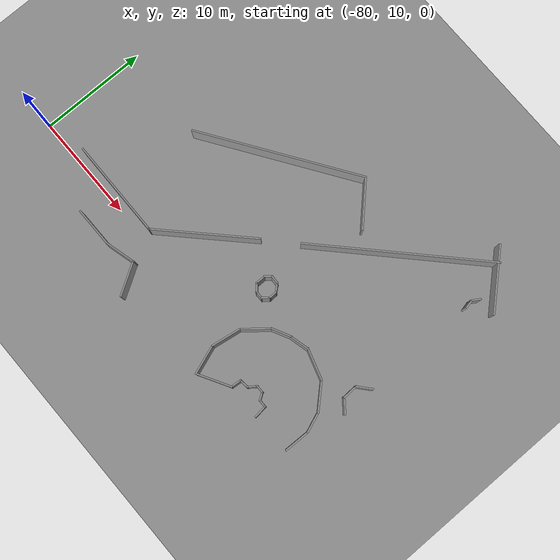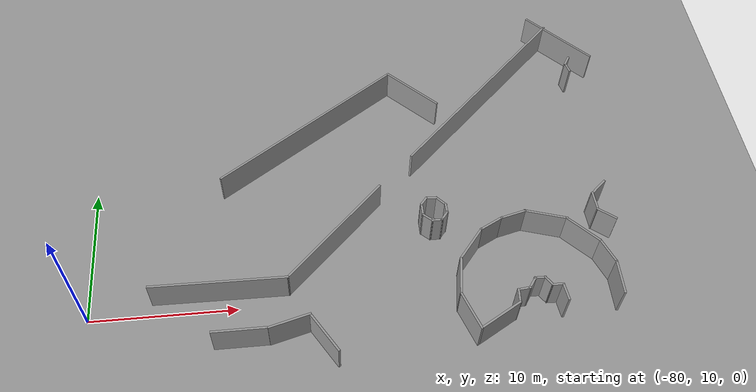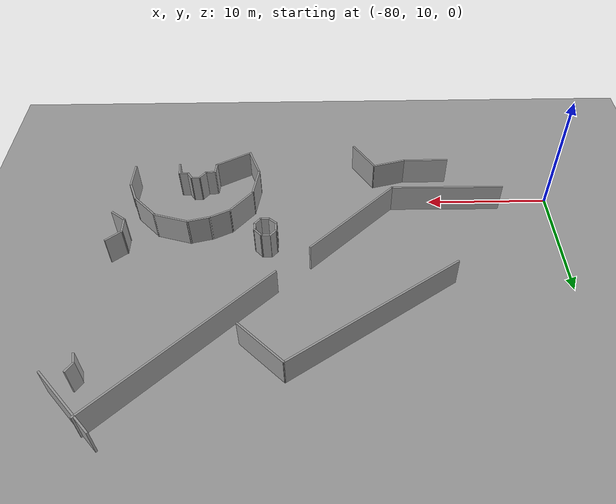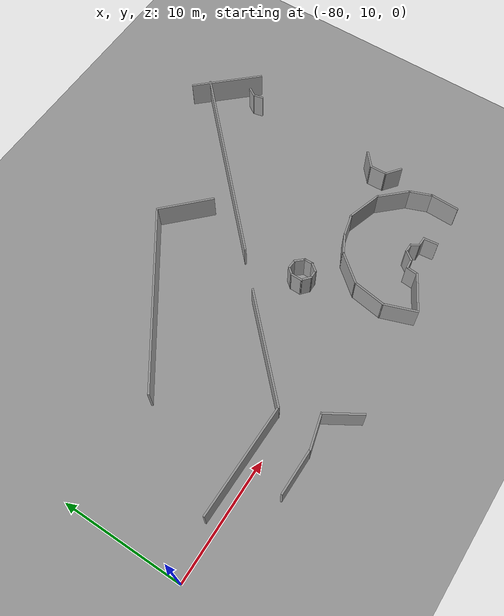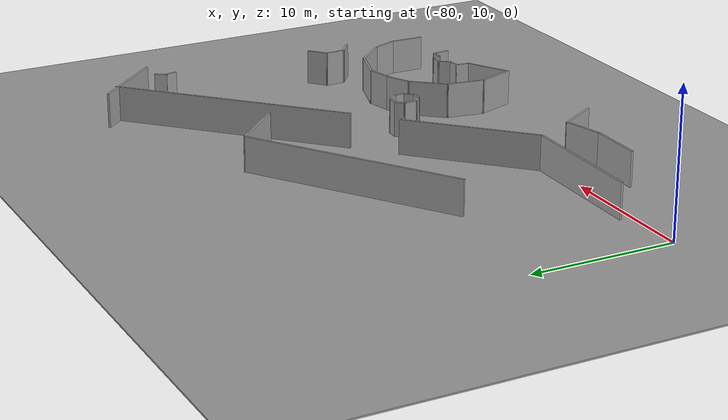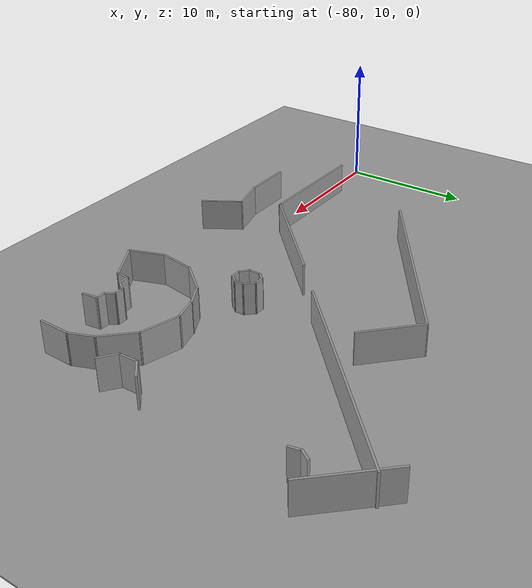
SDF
<sdf version="1.6">
 <world name="default">
  <model name="ground_plane">
   <static>1</static>
   <link name="link">
    <collision name="collision">
     <geometry><plane><normal>0 0 1</normal><size>100 100</size></plane></geometry>
     <surface><friction><ode><mu>100</mu><mu2>50</mu2></ode></friction></surface>
    </collision>
    <visual name="visual">
     <cast_shadows>0</cast_shadows>
     <geometry><plane><normal>0 0 1</normal><size>100 100</size></plane></geometry>
     <material>
      <script><uri>file://media/materials/scripts/gazebo.material</uri><name>Gazebo/Grey</name></script>
     </material>
    </visual>
   </link>
  </model>
  <model name="mall_new_reduce_size">
   <pose>-6.8092 7.5529 0 0 -0 0</pose>
   <link name="Wall_0">
    <collision name="Wall_0_Collision">
     <geometry><box><size>9.25048 0.15 2.5</size></box></geometry>
     <pose>0 0 1.25 0 -0 0</pose>
    </collision>
    <visual name="Wall_0_Visual">
     <pose>0 0 1.25 0 -0 0</pose>
     <geometry><box><size>9.25048 0.15 2.5</size></box></geometry>
     <material>
      <script><uri>file://media/materials/scripts/gazebo.material</uri><name>Gazebo/Grey</name></script>
      <ambient>1 1 1 1</ambient>
     </material>
     <meta><layer>0</layer></meta>
    </visual>
    <pose>-64.3372 3.2996 0 0 -0 -0.010225</pose>
   </link>
   <link name="Wall_10">
    <collision name="Wall_10_Collision">
     <geometry><box><size>15.64 0.15 2.5</size></box></geometry>
     <pose>0 0 1.25 0 -0 0</pose>
    </collision>
    <visual name="Wall_10_Visual">
     <pose>0 0 1.25 0 -0 0</pose>
     <geometry><box><size>15.64 0.15 2.5</size></box></geometry>
     <material>
      <script><uri>file://media/materials/scripts/gazebo.material</uri><name>Gazebo/Grey</name></script>
      <ambient>1 1 1 1</ambient>
     </material>
     <meta><layer>0</layer></meta>
    </visual>
    <pose>-57.6357 15.9234 0 0 -0 0.595213</pose>
   </link>
   <link name="Wall_106">
    <collision name="Wall_106_Collision">
     <geometry><box><size>0.88293 0.15 2.5</size></box></geometry>
     <pose>0 0 1.25 0 -0 0</pose>
    </collision>
    <visual name="Wall_106_Visual">
     <pose>0 0 1.25 0 -0 0</pose>
     <geometry><box><size>0.88293 0.15 2.5</size></box></geometry>
     <material>
      <script><uri>file://media/materials/scripts/gazebo.material</uri><name>Gazebo/Grey</name></script>
      <ambient>1 1 1 1</ambient>
     </material>
     <meta><layer>0</layer></meta>
    </visual>
    <pose>-37.2247 20.3731 0 0 -0 1.00343</pose>
   </link>
   <link name="Wall_11">
    <collision name="Wall_11_Collision">
     <geometry><box><size>4.74566 0.15 2.5</size></box></geometry>
     <pose>0 0 1.25 0 -0 0</pose>
    </collision>
    <visual name="Wall_11_Visual">
     <pose>0 0 1.25 0 -0 0</pose>
     <geometry><box><size>4.74566 0.15 2.5</size></box></geometry>
     <material>
      <script><uri>file://media/materials/scripts/gazebo.material</uri><name>Gazebo/Grey</name></script>
      <ambient>1 1 1 1</ambient>
     </material>
     <meta><layer>0</layer></meta>
    </visual>
    <pose>-49.5878 18.6511 0 0 -0 -0.779209</pose>
   </link>
   <link name="Wall_116">
    <collision name="Wall_116_Collision">
     <geometry><box><size>0.795039 0.15 2.5</size></box></geometry>
     <pose>0 0 1.25 0 -0 0</pose>
    </collision>
    <visual name="Wall_116_Visual">
     <pose>0 0 1.25 0 -0 0</pose>
     <geometry><box><size>0.795039 0.15 2.5</size></box></geometry>
     <material>
      <script><uri>file://media/materials/scripts/gazebo.material</uri><name>Gazebo/Grey</name></script>
      <ambient>1 1 1 1</ambient>
     </material>
     <meta><layer>0</layer></meta>
    </visual>
    <pose>-37.3234 19.6378 0 0 -0 1.78689</pose>
   </link>
   <link name="Wall_15">
    <collision name="Wall_15_Collision">
     <geometry><box><size>17.0313 0.15 2.5</size></box></geometry>
     <pose>0 0 1.25 0 -0 0</pose>
    </collision>
    <visual name="Wall_15_Visual">
     <pose>0 0 1.25 0 -0 0</pose>
     <geometry><box><size>17.0313 0.15 2.5</size></box></geometry>
     <material>
      <script><uri>file://media/materials/scripts/gazebo.material</uri><name>Gazebo/Grey</name></script>
      <ambient>1 1 1 1</ambient>
     </material>
     <meta><layer>0</layer></meta>
    </visual>
    <pose>-44.3443 18.1837 0 0 -0 0.766862</pose>
   </link>
   <link name="Wall_17">
    <collision name="Wall_17_Collision">
     <geometry><box><size>6.11812 0.15 2.5</size></box></geometry>
     <pose>0 0 1.25 0 -0 0</pose>
    </collision>
    <visual name="Wall_17_Visual">
     <pose>0 0 1.25 0 -0 0</pose>
     <geometry><box><size>6.11812 0.15 2.5</size></box></geometry>
     <material>
      <script><uri>file://media/materials/scripts/gazebo.material</uri><name>Gazebo/Grey</name></script>
      <ambient>1 1 1 1</ambient>
     </material>
     <meta><layer>0</layer></meta>
    </visual>
    <pose>-37.3721 22.8899 0 0 -0 -0.823537</pose>
   </link>
   <link name="Wall_2">
    <collision name="Wall_2_Collision">
     <geometry><box><size>9.63799 0.15 2.5</size></box></geometry>
     <pose>0 0 1.25 0 -0 0</pose>
    </collision>
    <visual name="Wall_2_Visual">
     <pose>0 0 1.25 0 -0 0</pose>
     <geometry><box><size>9.63799 0.15 2.5</size></box></geometry>
     <material>
      <script><uri>file://media/materials/scripts/gazebo.material</uri><name>Gazebo/Grey</name></script>
      <ambient>1 1 1 1</ambient>
     </material>
     <meta><layer>0</layer></meta>
    </visual>
    <pose>-56.4049 6.57954 0 0 -0 -2.36452</pose>
   </link>
   <link name="Wall_358">
    <collision name="Wall_358_Collision">
     <geometry><box><size>3.19362 0.15 2.5</size></box></geometry>
     <pose>0 0 1.25 0 -0 0</pose>
    </collision>
    <visual name="Wall_358_Visual">
     <pose>0 0 1.25 0 -0 0</pose>
     <geometry><box><size>3.19362 0.15 2.5</size></box></geometry>
     <material>
      <script><uri>file://media/materials/scripts/gazebo.material</uri><name>Gazebo/Grey</name></script>
      <ambient>1 1 1 1</ambient>
     </material>
     <meta><layer>0</layer></meta>
    </visual>
    <pose>-46.3456 -0.707961 0 0 -0 0.516499</pose>
   </link>
   <link name="Wall_359">
    <collision name="Wall_359_Collision">
     <geometry><box><size>1.04111 0.15 2.5</size></box></geometry>
     <pose>0 0 1.25 0 -0 0</pose>
    </collision>
    <visual name="Wall_359_Visual">
     <pose>0 0 1.25 0 -0 0</pose>
     <geometry><box><size>1.04111 0.15 2.5</size></box></geometry>
     <material>
      <script><uri>file://media/materials/scripts/gazebo.material</uri><name>Gazebo/Grey</name></script>
      <ambient>1 1 1 1</ambient>
     </material>
     <meta><layer>0</layer></meta>
    </visual>
    <pose>-44.9848 0.498691 0 0 -0 1.4865</pose>
   </link>
   <link name="Wall_360">
    <collision name="Wall_360_Collision">
     <geometry><box><size>0.919989 0.15 2.5</size></box></geometry>
     <pose>0 0 1.25 0 -0 0</pose>
    </collision>
    <visual name="Wall_360_Visual">
     <pose>0 0 1.25 0 -0 0</pose>
     <geometry><box><size>0.919989 0.15 2.5</size></box></geometry>
     <material>
      <script><uri>file://media/materials/scripts/gazebo.material</uri><name>Gazebo/Grey</name></script>
      <ambient>1 1 1 1</ambient>
     </material>
     <meta><layer>0</layer></meta>
    </visual>
    <pose>-44.5529 0.979904 0 0 -0 0.096885</pose>
   </link>
   <link name="Wall_361">
    <collision name="Wall_361_Collision">
     <geometry><box><size>0.974663 0.15 2.5</size></box></geometry>
     <pose>0 0 1.25 0 -0 0</pose>
    </collision>
    <visual name="Wall_361_Visual">
     <pose>0 0 1.25 0 -0 0</pose>
     <geometry><box><size>0.974663 0.15 2.5</size></box></geometry>
     <material>
      <script><uri>file://media/materials/scripts/gazebo.material</uri><name>Gazebo/Grey</name></script>
      <ambient>1 1 1 1</ambient>
     </material>
     <meta><layer>0</layer></meta>
    </visual>
    <pose>-43.9353 1.35039 0 0 -0 0.941096</pose>
   </link>
   <link name="Wall_362">
    <collision name="Wall_362_Collision">
     <geometry><box><size>0.806122 0.15 2.5</size></box></geometry>
     <pose>0 0 1.25 0 -0 0</pose>
    </collision>
    <visual name="Wall_362_Visual">
     <pose>0 0 1.25 0 -0 0</pose>
     <geometry><box><size>0.806122 0.15 2.5</size></box></geometry>
     <material>
      <script><uri>file://media/materials/scripts/gazebo.material</uri><name>Gazebo/Grey</name></script>
      <ambient>1 1 1 1</ambient>
     </material>
     <meta><layer>0</layer></meta>
    </visual>
    <pose>-43.3645 1.68786 0 0 -0 -0.012851</pose>
   </link>
   <link name="Wall_363">
    <collision name="Wall_363_Collision">
     <geometry><box><size>0.82835 0.15 2.5</size></box></geometry>
     <pose>0 0 1.25 0 -0 0</pose>
    </collision>
    <visual name="Wall_363_Visual">
     <pose>0 0 1.25 0 -0 0</pose>
     <geometry><box><size>0.82835 0.15 2.5</size></box></geometry>
     <material>
      <script><uri>file://media/materials/scripts/gazebo.material</uri><name>Gazebo/Grey</name></script>
      <ambient>1 1 1 1</ambient>
     </material>
     <meta><layer>0</layer></meta>
    </visual>
    <pose>-42.8527 1.39011 0 0 -0 -0.998351</pose>
   </link>
   <link name="Wall_364">
    <collision name="Wall_364_Collision">
     <geometry><box><size>0.847899 0.15 2.5</size></box></geometry>
     <pose>0 0 1.25 0 -0 0</pose>
    </collision>
    <visual name="Wall_364_Visual">
     <pose>0 0 1.25 0 -0 0</pose>
     <geometry><box><size>0.847899 0.15 2.5</size></box></geometry>
     <material>
      <script><uri>file://media/materials/scripts/gazebo.material</uri><name>Gazebo/Grey</name></script>
      <ambient>1 1 1 1</ambient>
     </material>
     <meta><layer>0</layer></meta>
    </visual>
    <pose>-42.3118 1.09481 0 0 -0 -0.029209</pose>
   </link>
   <link name="Wall_365">
    <collision name="Wall_365_Collision">
     <geometry><box><size>1.27005 0.15 2.5</size></box></geometry>
     <pose>0 0 1.25 0 -0 0</pose>
    </collision>
    <visual name="Wall_365_Visual">
     <pose>0 0 1.25 0 -0 0</pose>
     <geometry><box><size>1.27005 0.15 2.5</size></box></geometry>
     <material>
      <script><uri>file://media/materials/scripts/gazebo.material</uri><name>Gazebo/Grey</name></script>
      <ambient>1 1 1 1</ambient>
     </material>
     <meta><layer>0</layer></meta>
    </visual>
    <pose>-41.9091 0.528067 0 0 -0 -1.45941</pose>
   </link>
   <link name="Wall_368">
    <collision name="Wall_368_Collision">
     <geometry><box><size>2.43294 0.15 2.5</size></box></geometry>
     <pose>0 0 1.25 0 -0 0</pose>
    </collision>
    <visual name="Wall_368_Visual">
     <pose>0 0 1.25 0 -0 0</pose>
     <geometry><box><size>2.43294 0.15 2.5</size></box></geometry>
     <material>
      <script><uri>file://media/materials/scripts/gazebo.material</uri><name>Gazebo/Grey</name></script>
      <ambient>1 1 1 1</ambient>
     </material>
     <meta><layer>0</layer></meta>
    </visual>
    <pose>-38.1023 1.28298 0 0 -0 1.54864</pose>
   </link>
   <link name="Wall_369">
    <collision name="Wall_369_Collision">
     <geometry><box><size>1.98148 0.15 2.5</size></box></geometry>
     <pose>0 0 1.25 0 -0 0</pose>
    </collision>
    <visual name="Wall_369_Visual">
     <pose>0 0 1.25 0 -0 0</pose>
     <geometry><box><size>1.98148 0.15 2.5</size></box></geometry>
     <material>
      <script><uri>file://media/materials/scripts/gazebo.material</uri><name>Gazebo/Grey</name></script>
      <ambient>1 1 1 1</ambient>
     </material>
     <meta><layer>0</layer></meta>
    </visual>
    <pose>-38.4143 3.2789 0 0 -0 1.93811</pose>
   </link>
   <link name="Wall_370">
    <collision name="Wall_370_Collision">
     <geometry><box><size>2.80655 0.15 2.5</size></box></geometry>
     <pose>0 0 1.25 0 -0 0</pose>
    </collision>
    <visual name="Wall_370_Visual">
     <pose>0 0 1.25 0 -0 0</pose>
     <geometry><box><size>2.80655 0.15 2.5</size></box></geometry>
     <material>
      <script><uri>file://media/materials/scripts/gazebo.material</uri><name>Gazebo/Grey</name></script>
      <ambient>1 1 1 1</ambient>
     </material>
     <meta><layer>0</layer></meta>
    </visual>
    <pose>-39.6621 5.10061 0 0 -0 2.32612</pose>
   </link>
   <link name="Wall_372">
    <collision name="Wall_372_Collision">
     <geometry><box><size>3.01709 0.15 2.5</size></box></geometry>
     <pose>0 0 1.25 0 -0 0</pose>
    </collision>
    <visual name="Wall_372_Visual">
     <pose>0 0 1.25 0 -0 0</pose>
     <geometry><box><size>3.01709 0.15 2.5</size></box></geometry>
     <material>
      <script><uri>file://media/materials/scripts/gazebo.material</uri><name>Gazebo/Grey</name></script>
      <ambient>1 1 1 1</ambient>
     </material>
     <meta><layer>0</layer></meta>
    </visual>
    <pose>-41.9417 6.50761 0 0 -0 2.84045</pose>
   </link>
   <link name="Wall_373">
    <collision name="Wall_373_Collision">
     <geometry><box><size>1.91289 0.15 2.5</size></box></geometry>
     <pose>0 0 1.25 0 -0 0</pose>
    </collision>
    <visual name="Wall_373_Visual">
     <pose>0 0 1.25 0 -0 0</pose>
     <geometry><box><size>1.91289 0.15 2.5</size></box></geometry>
     <material>
      <script><uri>file://media/materials/scripts/gazebo.material</uri><name>Gazebo/Grey</name></script>
      <ambient>1 1 1 1</ambient>
     </material>
     <meta><layer>0</layer></meta>
    </visual>
    <pose>-44.1511 6.70423 0 0 -0 -2.89655</pose>
   </link>
   <link name="Wall_374">
    <collision name="Wall_374_Collision">
     <geometry><box><size>1.87613 0.15 2.5</size></box></geometry>
     <pose>0 0 1.25 0 -0 0</pose>
    </collision>
    <visual name="Wall_374_Visual">
     <pose>0 0 1.25 0 -0 0</pose>
     <geometry><box><size>1.87613 0.15 2.5</size></box></geometry>
     <material>
      <script><uri>file://media/materials/scripts/gazebo.material</uri><name>Gazebo/Grey</name></script>
      <ambient>1 1 1 1</ambient>
     </material>
     <meta><layer>0</layer></meta>
    </visual>
    <pose>-45.7738 6.11041 0 0 -0 -2.66657</pose>
   </link>
   <link name="Wall_375">
    <collision name="Wall_375_Collision">
     <geometry><box><size>2.86167 0.15 2.5</size></box></geometry>
     <pose>0 0 1.25 0 -0 0</pose>
    </collision>
    <visual name="Wall_375_Visual">
     <pose>0 0 1.25 0 -0 0</pose>
     <geometry><box><size>2.86167 0.15 2.5</size></box></geometry>
     <material>
      <script><uri>file://media/materials/scripts/gazebo.material</uri><name>Gazebo/Grey</name></script>
      <ambient>1 1 1 1</ambient>
     </material>
     <meta><layer>0</layer></meta>
    </visual>
    <pose>-47.4141 4.66594 0 0 -0 -2.25608</pose>
   </link>
   <link name="Wall_376">
    <collision name="Wall_376_Collision">
     <geometry><box><size>2.77757 0.15 2.5</size></box></geometry>
     <pose>0 0 1.25 0 -0 0</pose>
    </collision>
    <visual name="Wall_376_Visual">
     <pose>0 0 1.25 0 -0 0</pose>
     <geometry><box><size>2.77757 0.15 2.5</size></box></geometry>
     <material>
      <script><uri>file://media/materials/scripts/gazebo.material</uri><name>Gazebo/Grey</name></script>
      <ambient>1 1 1 1</ambient>
     </material>
     <meta><layer>0</layer></meta>
    </visual>
    <pose>-48.4747 2.30335 0 0 -0 -1.72552</pose>
   </link>
   <link name="Wall_377">
    <collision name="Wall_377_Collision">
     <geometry><box><size>2.81467 0.15 2.5</size></box></geometry>
     <pose>0 0 1.25 0 -0 0</pose>
    </collision>
    <visual name="Wall_377_Visual">
     <pose>0 0 1.25 0 -0 0</pose>
     <geometry><box><size>2.81467 0.15 2.5</size></box></geometry>
     <material>
      <script><uri>file://media/materials/scripts/gazebo.material</uri><name>Gazebo/Grey</name></script>
      <ambient>1 1 1 1</ambient>
     </material>
     <meta><layer>0</layer></meta>
    </visual>
    <pose>-48.2323 -0.265382 0 0 -0 -1.23042</pose>
   </link>
   <link name="Wall_386">
    <collision name="Wall_386_Collision">
     <geometry><box><size>1.51794 0.15 2.5</size></box></geometry>
     <pose>0 0 1.25 0 -0 0</pose>
    </collision>
    <visual name="Wall_386_Visual">
     <pose>0 0 1.25 0 -0 0</pose>
     <geometry><box><size>1.51794 0.15 2.5</size></box></geometry>
     <material>
      <script><uri>file://media/materials/scripts/gazebo.material</uri><name>Gazebo/Grey</name></script>
      <ambient>1 1 1 1</ambient>
     </material>
     <meta><layer>0</layer></meta>
    </visual>
    <pose>-37.7496 6.17559 0 0 -0 2.47754</pose>
   </link>
   <link name="Wall_387">
    <collision name="Wall_387_Collision">
     <geometry><box><size>1.49648 0.15 2.5</size></box></geometry>
     <pose>0 0 1.25 0 -0 0</pose>
    </collision>
    <visual name="Wall_387_Visual">
     <pose>0 0 1.25 0 -0 0</pose>
     <geometry><box><size>1.49648 0.15 2.5</size></box></geometry>
     <material>
      <script><uri>file://media/materials/scripts/gazebo.material</uri><name>Gazebo/Grey</name></script>
      <ambient>1 1 1 1</ambient>
     </material>
     <meta><layer>0</layer></meta>
    </visual>
    <pose>-38.2994 7.2698 0 0 -0 1.60394</pose>
   </link>
   <link name="Wall_388">
    <collision name="Wall_388_Collision">
     <geometry><box><size>1.55734 0.15 2.5</size></box></geometry>
     <pose>0 0 1.25 0 -0 0</pose>
    </collision>
    <visual name="Wall_388_Visual">
     <pose>0 0 1.25 0 -0 0</pose>
     <geometry><box><size>1.55734 0.15 2.5</size></box></geometry>
     <material>
      <script><uri>file://media/materials/scripts/gazebo.material</uri><name>Gazebo/Grey</name></script>
      <ambient>1 1 1 1</ambient>
     </material>
     <meta><layer>0</layer></meta>
    </visual>
    <pose>-37.7894 8.39163 0 0 -0 0.713085</pose>
   </link>
   <link name="Wall_391">
    <collision name="Wall_391_Collision">
     <geometry><box><size>0.801054 0.15 2.5</size></box></geometry>
     <pose>0 0 1.25 0 -0 0</pose>
    </collision>
    <visual name="Wall_391_Visual">
     <pose>0 0 1.25 0 -0 0</pose>
     <geometry><box><size>0.801054 0.15 2.5</size></box></geometry>
     <material>
      <script><uri>file://media/materials/scripts/gazebo.material</uri><name>Gazebo/Grey</name></script>
      <ambient>1 1 1 1</ambient>
     </material>
     <meta><layer>0</layer></meta>
    </visual>
    <pose>-49.5259 8.56782 0 0 -0 -0.059644</pose>
   </link>
   <link name="Wall_392">
    <collision name="Wall_392_Collision">
     <geometry><box><size>0.977816 0.15 2.5</size></box></geometry>
     <pose>0 0 1.25 0 -0 0</pose>
    </collision>
    <visual name="Wall_392_Visual">
     <pose>0 0 1.25 0 -0 0</pose>
     <geometry><box><size>0.977816 0.15 2.5</size></box></geometry>
     <material>
      <script><uri>file://media/materials/scripts/gazebo.material</uri><name>Gazebo/Grey</name></script>
      <ambient>1 1 1 1</ambient>
     </material>
     <meta><layer>0</layer></meta>
    </visual>
    <pose>-48.9309 8.24512 0 0 -0 -0.842257</pose>
   </link>
   <link name="Wall_393">
    <collision name="Wall_393_Collision">
     <geometry><box><size>0.800275 0.15 2.5</size></box></geometry>
     <pose>0 0 1.25 0 -0 0</pose>
    </collision>
    <visual name="Wall_393_Visual">
     <pose>0 0 1.25 0 -0 0</pose>
     <geometry><box><size>0.800275 0.15 2.5</size></box></geometry>
     <material>
      <script><uri>file://media/materials/scripts/gazebo.material</uri><name>Gazebo/Grey</name></script>
      <ambient>1 1 1 1</ambient>
     </material>
     <meta><layer>0</layer></meta>
    </visual>
    <pose>-48.6442 7.60579 0 0 -0 -1.53669</pose>
   </link>
   <link name="Wall_394">
    <collision name="Wall_394_Collision">
     <geometry><box><size>0.859742 0.15 2.5</size></box></geometry>
     <pose>0 0 1.25 0 -0 0</pose>
    </collision>
    <visual name="Wall_394_Visual">
     <pose>0 0 1.25 0 -0 0</pose>
     <geometry><box><size>0.859742 0.15 2.5</size></box></geometry>
     <material>
      <script><uri>file://media/materials/scripts/gazebo.material</uri><name>Gazebo/Grey</name></script>
      <ambient>1 1 1 1</ambient>
     </material>
     <meta><layer>0</layer></meta>
    </visual>
    <pose>-48.8588 7.00804 0 0 -0 -2.23994</pose>
   </link>
   <link name="Wall_395">
    <collision name="Wall_395_Collision">
     <geometry><box><size>0.794353 0.15 2.5</size></box></geometry>
     <pose>0 0 1.25 0 -0 0</pose>
    </collision>
    <visual name="Wall_395_Visual">
     <pose>0 0 1.25 0 -0 0</pose>
     <geometry><box><size>0.794353 0.15 2.5</size></box></geometry>
     <material>
      <script><uri>file://media/materials/scripts/gazebo.material</uri><name>Gazebo/Grey</name></script>
      <ambient>1 1 1 1</ambient>
     </material>
     <meta><layer>0</layer></meta>
    </visual>
    <pose>-49.3956 6.7297 0 0 -0 3.14159</pose>
   </link>
   <link name="Wall_396">
    <collision name="Wall_396_Collision">
     <geometry><box><size>0.916096 0.15 2.5</size></box></geometry>
     <pose>0 0 1.25 0 -0 0</pose>
    </collision>
    <visual name="Wall_396_Visual">
     <pose>0 0 1.25 0 -0 0</pose>
     <geometry><box><size>0.916096 0.15 2.5</size></box></geometry>
     <material>
      <script><uri>file://media/materials/scripts/gazebo.material</uri><name>Gazebo/Grey</name></script>
      <ambient>1 1 1 1</ambient>
     </material>
     <meta><layer>0</layer></meta>
    </visual>
    <pose>-50.0103 6.98341 0 0 -0 2.41764</pose>
   </link>
   <link name="Wall_397">
    <collision name="Wall_397_Collision">
     <geometry><box><size>1.03328 0.15 2.5</size></box></geometry>
     <pose>0 0 1.25 0 -0 0</pose>
    </collision>
    <visual name="Wall_397_Visual">
     <pose>0 0 1.25 0 -0 0</pose>
     <geometry><box><size>1.03328 0.15 2.5</size></box></geometry>
     <material>
      <script><uri>file://media/materials/scripts/gazebo.material</uri><name>Gazebo/Grey</name></script>
      <ambient>1 1 1 1</ambient>
     </material>
     <meta><layer>0</layer></meta>
    </visual>
    <pose>-50.3056 7.67321 0 0 -0 1.56452</pose>
   </link>
   <link name="Wall_398">
    <collision name="Wall_398_Collision">
     <geometry><box><size>0.752241 0.15 2.5</size></box></geometry>
     <pose>0 0 1.25 0 -0 0</pose>
    </collision>
    <visual name="Wall_398_Visual">
     <pose>0 0 1.25 0 -0 0</pose>
     <geometry><box><size>0.752241 0.15 2.5</size></box></geometry>
     <material>
      <script><uri>file://media/materials/scripts/gazebo.material</uri><name>Gazebo/Grey</name></script>
      <ambient>1 1 1 1</ambient>
     </material>
     <meta><layer>0</layer></meta>
    </visual>
    <pose>-50.1044 8.34606 0 0 -0 0.875499</pose>
   </link>
   <link name="Wall_422">
    <collision name="Wall_422_Collision">
     <geometry><box><size>3.74241 0.15 2.5</size></box></geometry>
     <pose>0 0 1.25 0 -0 0</pose>
    </collision>
    <visual name="Wall_422_Visual">
     <pose>0 0 1.25 0 -0 0</pose>
     <geometry><box><size>3.74241 0.15 2.5</size></box></geometry>
     <material>
      <script><uri>file://media/materials/scripts/gazebo.material</uri><name>Gazebo/Grey</name></script>
      <ambient>1 1 1 1</ambient>
     </material>
     <meta><layer>0</layer></meta>
    </visual>
    <pose>-62.9887 -0.242289 0 0 -0 0</pose>
   </link>
   <link name="Wall_423">
    <collision name="Wall_423_Collision">
     <geometry><box><size>2.9099 0.15 2.5</size></box></geometry>
     <pose>0 0 1.25 0 -0 0</pose>
    </collision>
    <visual name="Wall_423_Visual">
     <pose>0 0 1.25 0 -0 0</pose>
     <geometry><box><size>2.9099 0.15 2.5</size></box></geometry>
     <material>
      <script><uri>file://media/materials/scripts/gazebo.material</uri><name>Gazebo/Grey</name></script>
      <ambient>1 1 1 1</ambient>
     </material>
     <meta><layer>0</layer></meta>
    </visual>
    <pose>-59.8301 0.103872 0 0 -0 0.260825</pose>
   </link>
   <link name="Wall_424">
    <collision name="Wall_424_Collision">
     <geometry><box><size>3.24233 0.15 2.5</size></box></geometry>
     <pose>0 0 1.25 0 -0 0</pose>
    </collision>
    <visual name="Wall_424_Visual">
     <pose>0 0 1.25 0 -0 0</pose>
     <geometry><box><size>3.24233 0.15 2.5</size></box></geometry>
     <material>
      <script><uri>file://media/materials/scripts/gazebo.material</uri><name>Gazebo/Grey</name></script>
      <ambient>1 1 1 1</ambient>
     </material>
     <meta><layer>0</layer></meta>
    </visual>
    <pose>-57.693 -0.870766 0 0 -0 -1.02409</pose>
   </link>
   <static>1</static>
  </model>
  <model name="ground_plane_0">
   <static>1</static>
   <link name="link">
    <collision name="collision">
     <geometry><plane><normal>0 0 1</normal><size>100 100</size></plane></geometry>
     <surface><friction><ode><mu>100</mu><mu2>50</mu2></ode></friction></surface>
    </collision>
    <visual name="visual">
     <cast_shadows>0</cast_shadows>
     <geometry><plane><normal>0 0 1</normal><size>100 100</size></plane></geometry>
     <material>
      <script><uri>file://media/materials/scripts/gazebo.material</uri><name>Gazebo/Grey</name></script>
     </material>
    </visual>
   </link>
   <pose>-74.6089 17.2033 0 0 -0 0</pose>
  </model>
 </world>
</sdf>
